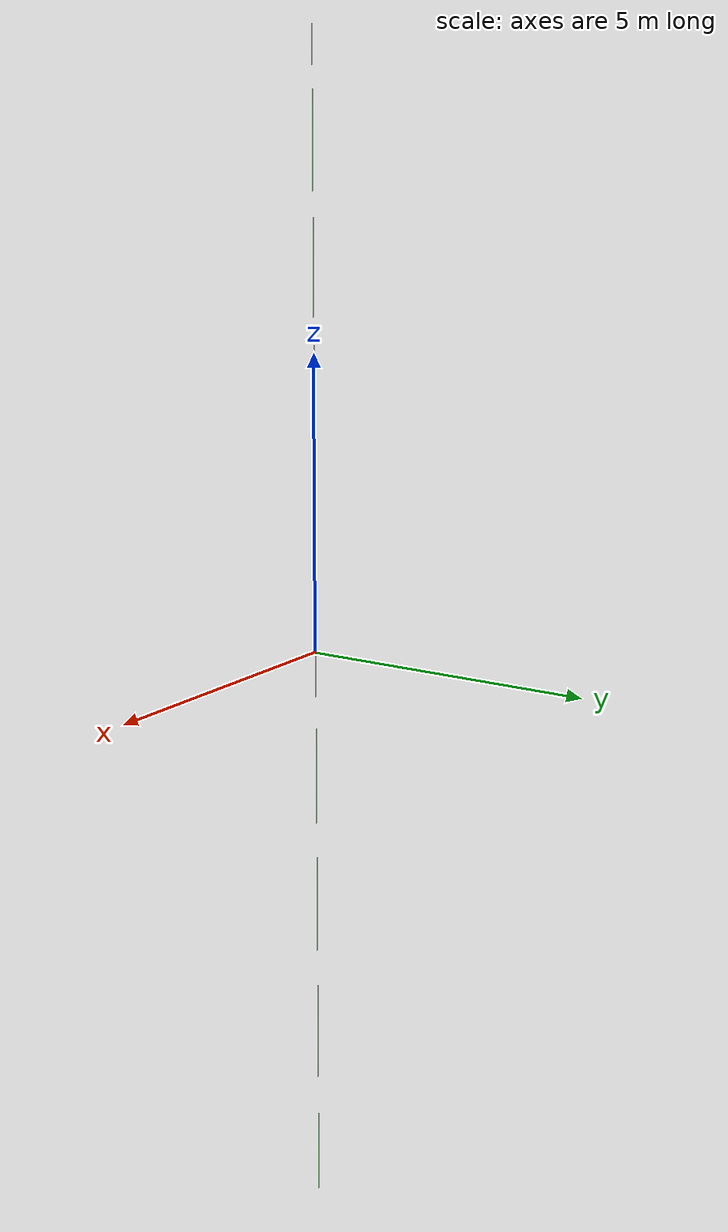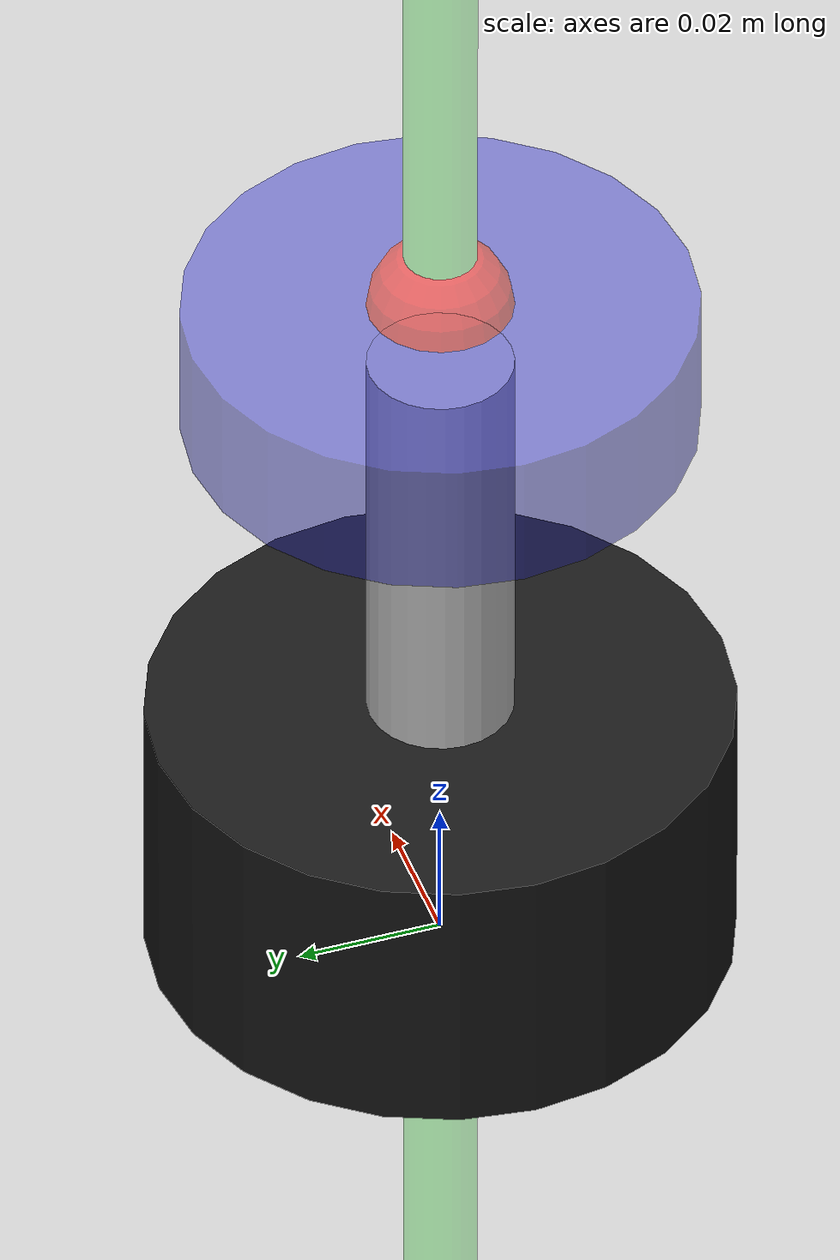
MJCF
<mujoco model="suction_gripper">
    <statistic center="0 0 0" extent="0.2" />

    <visual>
        <headlight diffuse="0.6 0.6 0.6" ambient="0.3 0.3 0.3" specular="0 0 0" />
        <rgba haze="0.15 0.25 0.35 1" />
        <global azimuth="120" elevation="-20" />
    </visual>

    <asset>
        <material name="light_gray" rgba="0.8 0.8 0.8 1" />
        <material name="soft_silicone" rgba="0.2 0.2 0.8 0.5" />
        <material name="black" rgba="0.1 0.1 0.1 1" />
    </asset>

    <actuator>
        <!-- Adhesion actuator for suction -->
        <!-- control range 0 (off) to 1 (full suction) -->
        <!-- gain sets the strength of the adhesion -->
        <adhesion name="suction" body="suction_cup" ctrlrange="0 1" gain="1000"/>
    </actuator>

    <worldbody>
        <body name="suction_gripper_base" pos="0 0 0">
            <inertial pos="0 0 0.05" mass="0.3" diaginertia="0.001 0.001 0.001" />

            <!-- Mount / Base -->
            <geom type="cylinder" size="0.04 0.02" pos="0 0 0.02" rgba="0.1 0.1 0.1 1" name="base_geom" />

            <!-- Connection to cup -->
            <geom type="cylinder" size="0.01 0.04" pos="0 0 0.06" rgba="0.8 0.8 0.8 1" name="stem_geom" />

            <!-- Suction Cup Body (the part that adheres) -->
            <body name="suction_cup" pos="0 0 0.10">
                <inertial pos="0 0 0" mass="0.05" diaginertia="0.0001 0.0001 0.0001" />

                <!-- Visual Soft Cup -->
                <geom type="cylinder" size="0.035 0.01" pos="0 0 0" material="soft_silicone" name="cup_visual" contype="0" conaffinity="0"/>

                <!-- Collision Cup (determines contact) -->
                <!-- solref/solimp parameters tuned for softer contact -->
                <geom type="cylinder" size="0.035 0.01" pos="0 0 0" rgba="0.2 0.2 0.8 0.2" name="cup_collision" group="0" solref="0.01 0.5" solimp="0.9 0.95 0.001"/>
            </body>

            <!-- Force/Torque Sensor Frame -->
            <site name="ft_frame" pos="0 0 0" size="0.01 0.01 0.01" rgba="1 0 0 1" type="sphere" group="1" />

            <!-- End Effector Sites -->
            <body name="eef" pos="0 0 0.11" quat="0.707105 0 0 -0.707105">
                <site name="grip_site" pos="0 0 0" size="0.01 0.01 0.01" rgba="1 0 0 0.5" type="sphere" group="1"/>
                <site name="ee_x" pos="0.1 0 0" size="0.005 .1"  quat="0.707105  0 0.707108 0 " rgba="1 0 0 0" type="cylinder" group="1"/>
                <site name="ee_y" pos="0 0.1 0" size="0.005 .1" quat="0.707105 0.707108 0 0" rgba="0 1 0 0" type="cylinder" group="1"/>
                <site name="ee_z" pos="0 0 0.1" size="0.005 .1" quat="1 0 0 0" rgba="0 0 1 0" type="cylinder" group="1"/>
                <site name="grip_site_cylinder" pos="0 0 0" size="0.005 10" rgba="0 1 0 0.3" type="cylinder" group="1"/>
            </body>
        </body>
    </worldbody>
    <sensor>
        <force name="force_ee" site="ft_frame"/>
        <torque name="torque_ee" site="ft_frame"/>
    </sensor>
</mujoco>
